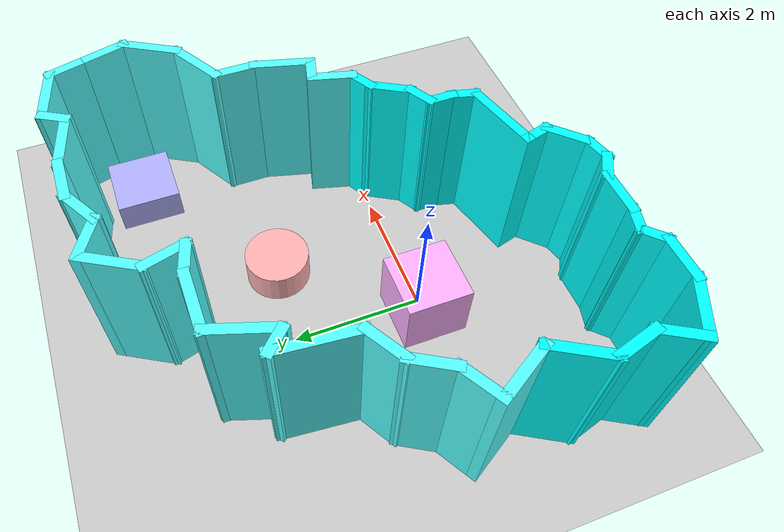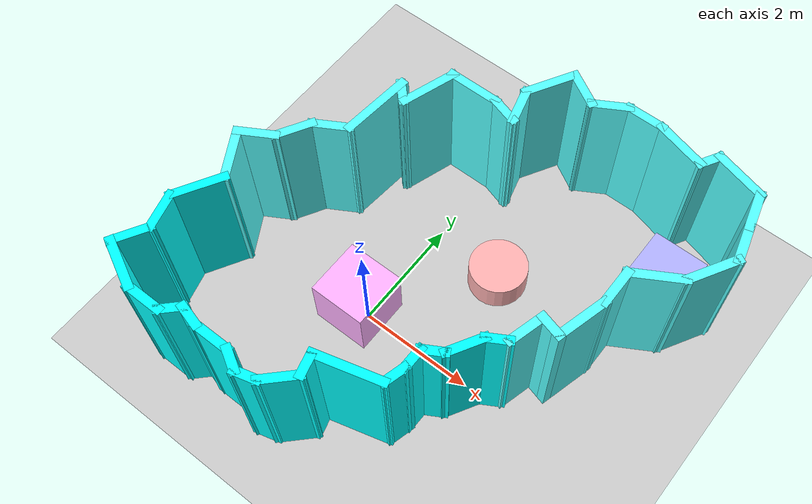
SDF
<sdf version="1.6">
 <world name="default">
  <light name="sun" type="directional">
   <pose>0 0 10 0 -0 0</pose>
   <diffuse>0.8 0.8 0.8 1</diffuse>
   <specular>0.2 0.2 0.2 1</specular>
   <attenuation>
    <range>1000</range>
    <constant>0.9</constant>
    <linear>0.01</linear>
    <quadratic>0.001</quadratic>
   </attenuation>
   <direction>-0.5 0.1 -0.9</direction>
  </light>
  <model name="ground_plane">
   <static>1</static>
   <link name="link">
    <collision name="collision">
     <geometry><plane><normal>0 0 1</normal><size>100 100</size></plane></geometry>
     <surface>
      <contact><collide_bitmask>65535</collide_bitmask></contact>
      <friction><ode><mu>100</mu><mu2>50</mu2></ode></friction>
     </surface>
    </collision>
    <visual name="visual">
     <cast_shadows>0</cast_shadows>
     <geometry><plane><normal>0 0 1</normal><size>100 100</size></plane></geometry>
     <material>
      <script><uri>file://media/materials/scripts/gazebo.material</uri><name>Gazebo/Grey</name></script>
     </material>
    </visual>
   </link>
  </model>
  <gravity>0 0 -9.8</gravity>
  <magnetic_field>6e-06 2.3e-05 -4.2e-05</magnetic_field>
  <atmosphere type="adiabatic"/>
  <physics name="default_physics" default="0" type="ode">
   <max_step_size>0.001</max_step_size>
   <real_time_factor>1</real_time_factor>
   <real_time_update_rate>1000</real_time_update_rate>
  </physics>
  <scene><ambient>0.4 0.4 0.4 1</ambient><background>0.7 0.7 0.7 1</background><shadows>1</shadows></scene>
  <audio><device>default</device></audio>
  <spherical_coordinates>
   <surface_model>EARTH_WGS84</surface_model>
   <latitude_deg>0</latitude_deg>
   <longitude_deg>0</longitude_deg>
   <elevation>0</elevation>
   <heading_deg>0</heading_deg>
  </spherical_coordinates>
  <model name="maze2">
   <pose>0.785293 0.998675 0 0 -0 0</pose>
   <link name="Wall_1">
    <collision name="Wall_1_Collision">
     <geometry><box><size>0.75 0.15 2.5</size></box></geometry>
     <pose>0 0 1.25 0 -0 0</pose>
    </collision>
    <visual name="Wall_1_Visual">
     <pose>0 0 1.25 0 -0 0</pose>
     <geometry><box><size>0.75 0.15 2.5</size></box></geometry>
     <material>
      <script><uri>file://media/materials/scripts/gazebo.material</uri><name>Gazebo/Grey</name></script>
      <ambient>0 1 1 1</ambient>
     </material>
     <meta><layer>0</layer></meta>
    </visual>
    <pose>-2.6747 -3.55468 0 0 -0 0</pose>
   </link>
   <link name="Wall_10">
    <collision name="Wall_10_Collision">
     <geometry><box><size>0.5 0.15 2.5</size></box></geometry>
     <pose>0 0 1.25 0 -0 0</pose>
    </collision>
    <visual name="Wall_10_Visual">
     <pose>0 0 1.25 0 -0 0</pose>
     <geometry><box><size>0.5 0.15 2.5</size></box></geometry>
     <material>
      <script><uri>file://media/materials/scripts/gazebo.material</uri><name>Gazebo/Grey</name></script>
      <ambient>0 1 1 1</ambient>
     </material>
     <meta><layer>0</layer></meta>
    </visual>
    <pose>0.893535 -2.26611 0 0 -0 1.309</pose>
   </link>
   <link name="Wall_11">
    <collision name="Wall_11_Collision">
     <geometry><box><size>0.5 0.15 2.5</size></box></geometry>
     <pose>0 0 1.25 0 -0 0</pose>
    </collision>
    <visual name="Wall_11_Visual">
     <pose>0 0 1.25 0 -0 0</pose>
     <geometry><box><size>0.5 0.15 2.5</size></box></geometry>
     <material>
      <script><uri>file://media/materials/scripts/gazebo.material</uri><name>Gazebo/Grey</name></script>
      <ambient>0 1 1 1</ambient>
     </material>
     <meta><layer>0</layer></meta>
    </visual>
    <pose>0.938829 -1.92207 0 0 -0 1.5708</pose>
   </link>
   <link name="Wall_12">
    <collision name="Wall_12_Collision">
     <geometry><box><size>0.5 0.15 2.5</size></box></geometry>
     <pose>0 0 1.25 0 -0 0</pose>
    </collision>
    <visual name="Wall_12_Visual">
     <pose>0 0 1.25 0 -0 0</pose>
     <geometry><box><size>0.5 0.15 2.5</size></box></geometry>
     <material>
      <script><uri>file://media/materials/scripts/gazebo.material</uri><name>Gazebo/Grey</name></script>
      <ambient>0 1 1 1</ambient>
     </material>
     <meta><layer>0</layer></meta>
    </visual>
    <pose>1.09038 -1.65958 0 0 -0 0.523599</pose>
   </link>
   <link name="Wall_13">
    <collision name="Wall_13_Collision">
     <geometry><box><size>0.75 0.15 2.5</size></box></geometry>
     <pose>0 0 1.25 0 -0 0</pose>
    </collision>
    <visual name="Wall_13_Visual">
     <pose>0 0 1.25 0 -0 0</pose>
     <geometry><box><size>0.75 0.15 2.5</size></box></geometry>
     <material>
      <script><uri>file://media/materials/scripts/gazebo.material</uri><name>Gazebo/Grey</name></script>
      <ambient>0 1 1 1</ambient>
     </material>
     <meta><layer>0</layer></meta>
    </visual>
    <pose>1.39194 -1.31227 0 0 -0 1.0472</pose>
   </link>
   <link name="Wall_15">
    <collision name="Wall_15_Collision">
     <geometry><box><size>0.5 0.15 2.5</size></box></geometry>
     <pose>0 0 1.25 0 -0 0</pose>
    </collision>
    <visual name="Wall_15_Visual">
     <pose>0 0 1.25 0 -0 0</pose>
     <geometry><box><size>0.5 0.15 2.5</size></box></geometry>
     <material>
      <script><uri>file://media/materials/scripts/gazebo.material</uri><name>Gazebo/Grey</name></script>
      <ambient>0 1 1 1</ambient>
     </material>
     <meta><layer>0</layer></meta>
    </visual>
    <pose>1.69349 -0.96496 0 0 -0 0.523599</pose>
   </link>
   <link name="Wall_16">
    <collision name="Wall_16_Collision">
     <geometry><box><size>0.75 0.15 2.5</size></box></geometry>
     <pose>0 0 1.25 0 -0 0</pose>
    </collision>
    <visual name="Wall_16_Visual">
     <pose>0 0 1.25 0 -0 0</pose>
     <geometry><box><size>0.75 0.15 2.5</size></box></geometry>
     <material>
      <script><uri>file://media/materials/scripts/gazebo.material</uri><name>Gazebo/Grey</name></script>
      <ambient>0.333333 1 1 1</ambient>
     </material>
     <meta><layer>0</layer></meta>
    </visual>
    <pose>1.92269 -0.587682 0 0 -0 1.309</pose>
   </link>
   <link name="Wall_17">
    <collision name="Wall_17_Collision">
     <geometry><box><size>0.5 0.15 2.5</size></box></geometry>
     <pose>0 0 1.25 0 -0 0</pose>
    </collision>
    <visual name="Wall_17_Visual">
     <pose>0 0 1.25 0 -0 0</pose>
     <geometry><box><size>0.5 0.15 2.5</size></box></geometry>
     <material>
      <script><uri>file://media/materials/scripts/gazebo.material</uri><name>Gazebo/Grey</name></script>
      <ambient>0.333333 1 1 1</ambient>
     </material>
     <meta><layer>0</layer></meta>
    </visual>
    <pose>2.16938 -0.343198 0 0 -0 -0.261799</pose>
   </link>
   <link name="Wall_18">
    <collision name="Wall_18_Collision">
     <geometry><box><size>1 0.15 2.5</size></box></geometry>
     <pose>0 0 1.25 0 -0 0</pose>
    </collision>
    <visual name="Wall_18_Visual">
     <pose>0 0 1.25 0 -0 0</pose>
     <geometry><box><size>1 0.15 2.5</size></box></geometry>
     <material>
      <script><uri>file://media/materials/scripts/gazebo.material</uri><name>Gazebo/Grey</name></script>
      <ambient>0.333333 1 1 1</ambient>
     </material>
     <meta><layer>0</layer></meta>
    </visual>
    <pose>2.44841 0.022027 0 0 -0 1.309</pose>
   </link>
   <link name="Wall_19">
    <collision name="Wall_19_Collision">
     <geometry><box><size>0.75 0.15 2.5</size></box></geometry>
     <pose>0 0 1.25 0 -0 0</pose>
    </collision>
    <visual name="Wall_19_Visual">
     <pose>0 0 1.25 0 -0 0</pose>
     <geometry><box><size>0.75 0.15 2.5</size></box></geometry>
     <material>
      <script><uri>file://media/materials/scripts/gazebo.material</uri><name>Gazebo/Grey</name></script>
      <ambient>0.333333 1 1 1</ambient>
     </material>
     <meta><layer>0</layer></meta>
    </visual>
    <pose>2.55841 0.732546 0 0 -0 1.5708</pose>
   </link>
   <link name="Wall_2">
    <collision name="Wall_2_Collision">
     <geometry><box><size>0.5 0.15 2.5</size></box></geometry>
     <pose>0 0 1.25 0 -0 0</pose>
    </collision>
    <visual name="Wall_2_Visual">
     <pose>0 0 1.25 0 -0 0</pose>
     <geometry><box><size>0.5 0.15 2.5</size></box></geometry>
     <material>
      <script><uri>file://media/materials/scripts/gazebo.material</uri><name>Gazebo/Grey</name></script>
      <ambient>0 1 1 1</ambient>
     </material>
     <meta><layer>0</layer></meta>
    </visual>
    <pose>-2.25095 -3.43093 0 0 -0 0.785398</pose>
   </link>
   <link name="Wall_20">
    <collision name="Wall_20_Collision">
     <geometry><box><size>1 0.15 2.5</size></box></geometry>
     <pose>0 0 1.25 0 -0 0</pose>
    </collision>
    <visual name="Wall_20_Visual">
     <pose>0 0 1.25 0 -0 0</pose>
     <geometry><box><size>1 0.15 2.5</size></box></geometry>
     <material>
      <script><uri>file://media/materials/scripts/gazebo.material</uri><name>Gazebo/Grey</name></script>
      <ambient>0.333333 1 1 1</ambient>
     </material>
     <meta><layer>0</layer></meta>
    </visual>
    <pose>2.92647 1.24505 0 0 -0 0.523599</pose>
   </link>
   <link name="Wall_21">
    <collision name="Wall_21_Collision">
     <geometry><box><size>1 0.15 2.5</size></box></geometry>
     <pose>0 0 1.25 0 -0 0</pose>
    </collision>
    <visual name="Wall_21_Visual">
     <pose>0 0 1.25 0 -0 0</pose>
     <geometry><box><size>1 0.15 2.5</size></box></geometry>
     <material>
      <script><uri>file://media/materials/scripts/gazebo.material</uri><name>Gazebo/Grey</name></script>
      <ambient>0.333333 1 1 1</ambient>
     </material>
     <meta><layer>0</layer></meta>
    </visual>
    <pose>3.50703 1.82561 0 0 -0 1.0472</pose>
   </link>
   <link name="Wall_22">
    <collision name="Wall_22_Collision">
     <geometry><box><size>0.75 0.15 2.5</size></box></geometry>
     <pose>0 0 1.25 0 -0 0</pose>
    </collision>
    <visual name="Wall_22_Visual">
     <pose>0 0 1.25 0 -0 0</pose>
     <geometry><box><size>0.75 0.15 2.5</size></box></geometry>
     <material>
      <script><uri>file://media/materials/scripts/gazebo.material</uri><name>Gazebo/Grey</name></script>
      <ambient>0.333333 1 1 1</ambient>
     </material>
     <meta><layer>0</layer></meta>
    </visual>
    <pose>3.64188 2.48345 0 0 -0 1.8326</pose>
   </link>
   <link name="Wall_23">
    <collision name="Wall_23_Collision">
     <geometry><box><size>0.75 0.15 2.5</size></box></geometry>
     <pose>0 0 1.25 0 -0 0</pose>
    </collision>
    <visual name="Wall_23_Visual">
     <pose>0 0 1.25 0 -0 0</pose>
     <geometry><box><size>0.75 0.15 2.5</size></box></geometry>
     <material>
      <script><uri>file://media/materials/scripts/gazebo.material</uri><name>Gazebo/Grey</name></script>
      <ambient>0.333333 1 1 1</ambient>
     </material>
     <meta><layer>0</layer></meta>
    </visual>
    <pose>3.48659 3.063 0 0 -0 1.8326</pose>
   </link>
   <link name="Wall_24">
    <collision name="Wall_24_Collision">
     <geometry><box><size>1 0.15 2.5</size></box></geometry>
     <pose>0 0 1.25 0 -0 0</pose>
    </collision>
    <visual name="Wall_24_Visual">
     <pose>0 0 1.25 0 -0 0</pose>
     <geometry><box><size>1 0.15 2.5</size></box></geometry>
     <material>
      <script><uri>file://media/materials/scripts/gazebo.material</uri><name>Gazebo/Grey</name></script>
      <ambient>0.333333 1 1 1</ambient>
     </material>
     <meta><layer>0</layer></meta>
    </visual>
    <pose>2.99843 3.46278 0 0 -0 2.87979</pose>
   </link>
   <link name="Wall_25">
    <collision name="Wall_25_Collision">
     <geometry><box><size>0.5 0.15 2.5</size></box></geometry>
     <pose>0 0 1.25 0 -0 0</pose>
    </collision>
    <visual name="Wall_25_Visual">
     <pose>0 0 1.25 0 -0 0</pose>
     <geometry><box><size>0.5 0.15 2.5</size></box></geometry>
     <material>
      <script><uri>file://media/materials/scripts/gazebo.material</uri><name>Gazebo/Grey</name></script>
      <ambient>0.333333 1 1 1</ambient>
     </material>
     <meta><layer>0</layer></meta>
    </visual>
    <pose>2.50041 3.42122 0 0 -0 -2.0944</pose>
   </link>
   <link name="Wall_26">
    <collision name="Wall_26_Collision">
     <geometry><box><size>1 0.15 2.5</size></box></geometry>
     <pose>0 0 1.25 0 -0 0</pose>
    </collision>
    <visual name="Wall_26_Visual">
     <pose>0 0 1.25 0 -0 0</pose>
     <geometry><box><size>1 0.15 2.5</size></box></geometry>
     <material>
      <script><uri>file://media/materials/scripts/gazebo.material</uri><name>Gazebo/Grey</name></script>
      <ambient>0.333333 1 1 1</ambient>
     </material>
     <meta><layer>0</layer></meta>
    </visual>
    <pose>2.00239 3.37966 0 0 -0 2.87979</pose>
   </link>
   <link name="Wall_27">
    <collision name="Wall_27_Collision">
     <geometry><box><size>0.75 0.15 2.5</size></box></geometry>
     <pose>0 0 1.25 0 -0 0</pose>
    </collision>
    <visual name="Wall_27_Visual">
     <pose>0 0 1.25 0 -0 0</pose>
     <geometry><box><size>0.75 0.15 2.5</size></box></geometry>
     <material>
      <script><uri>file://media/materials/scripts/gazebo.material</uri><name>Gazebo/Grey</name></script>
      <ambient>0.333333 1 1 1</ambient>
     </material>
     <meta><layer>0</layer></meta>
    </visual>
    <pose>1.29187 3.48966 0 0 -0 3.14159</pose>
   </link>
   <link name="Wall_28">
    <collision name="Wall_28_Collision">
     <geometry><box><size>0.75 0.15 2.5</size></box></geometry>
     <pose>0 0 1.25 0 -0 0</pose>
    </collision>
    <visual name="Wall_28_Visual">
     <pose>0 0 1.25 0 -0 0</pose>
     <geometry><box><size>0.75 0.15 2.5</size></box></geometry>
     <material>
      <script><uri>file://media/materials/scripts/gazebo.material</uri><name>Gazebo/Grey</name></script>
      <ambient>0.333333 1 1 1</ambient>
     </material>
     <meta><layer>0</layer></meta>
    </visual>
    <pose>0.732065 3.33966 0 0 -0 -2.61799</pose>
   </link>
   <link name="Wall_29">
    <collision name="Wall_29_Collision">
     <geometry><box><size>0.75 0.15 2.5</size></box></geometry>
     <pose>0 0 1.25 0 -0 0</pose>
    </collision>
    <visual name="Wall_29_Visual">
     <pose>0 0 1.25 0 -0 0</pose>
     <geometry><box><size>0.75 0.15 2.5</size></box></geometry>
     <material>
      <script><uri>file://media/materials/scripts/gazebo.material</uri><name>Gazebo/Grey</name></script>
      <ambient>0.333333 1 1 1</ambient>
     </material>
     <meta><layer>0</layer></meta>
    </visual>
    <pose>0.21245 3.33966 0 0 -0 2.61799</pose>
   </link>
   <link name="Wall_3">
    <collision name="Wall_3_Collision">
     <geometry><box><size>0.5 0.15 2.5</size></box></geometry>
     <pose>0 0 1.25 0 -0 0</pose>
    </collision>
    <visual name="Wall_3_Visual">
     <pose>0 0 1.25 0 -0 0</pose>
     <geometry><box><size>0.5 0.15 2.5</size></box></geometry>
     <material>
      <script><uri>file://media/materials/scripts/gazebo.material</uri><name>Gazebo/Grey</name></script>
      <ambient>0 1 1 1</ambient>
     </material>
     <meta><layer>0</layer></meta>
    </visual>
    <pose>-1.95817 -3.35248 0 0 -0 -0.261799</pose>
   </link>
   <link name="Wall_30">
    <collision name="Wall_30_Collision">
     <geometry><box><size>1 0.15 2.5</size></box></geometry>
     <pose>0 0 1.25 0 -0 0</pose>
    </collision>
    <visual name="Wall_30_Visual">
     <pose>0 0 1.25 0 -0 0</pose>
     <geometry><box><size>1 0.15 2.5</size></box></geometry>
     <material>
      <script><uri>file://media/materials/scripts/gazebo.material</uri><name>Gazebo/Grey</name></script>
      <ambient>0.333333 1 1 1</ambient>
     </material>
     <meta><layer>0</layer></meta>
    </visual>
    <pose>-0.259858 3.1216 0 0 -0 -2.0944</pose>
   </link>
   <link name="Wall_31">
    <collision name="Wall_31_Collision">
     <geometry><box><size>0.75 0.15 2.5</size></box></geometry>
     <pose>0 0 1.25 0 -0 0</pose>
    </collision>
    <visual name="Wall_31_Visual">
     <pose>0 0 1.25 0 -0 0</pose>
     <geometry><box><size>0.75 0.15 2.5</size></box></geometry>
     <material>
      <script><uri>file://media/materials/scripts/gazebo.material</uri><name>Gazebo/Grey</name></script>
      <ambient>0.333333 1 1 1</ambient>
     </material>
     <meta><layer>0</layer></meta>
    </visual>
    <pose>-0.394712 2.46376 0 0 -0 -1.309</pose>
   </link>
   <link name="Wall_32">
    <collision name="Wall_32_Collision">
     <geometry><box><size>0.591953 0.15 2.5</size></box></geometry>
     <pose>0 0 1.25 0 -0 0</pose>
    </collision>
    <visual name="Wall_32_Visual">
     <pose>0 0 1.25 0 -0 0</pose>
     <geometry><box><size>0.591953 0.15 2.5</size></box></geometry>
     <material>
      <script><uri>file://media/materials/scripts/gazebo.material</uri><name>Gazebo/Grey</name></script>
      <ambient>0.333333 1 1 1</ambient>
     </material>
     <meta><layer>0</layer></meta>
    </visual>
    <pose>-0.528666 2.23767 0 0 -0 2.84924</pose>
   </link>
   <link name="Wall_33">
    <collision name="Wall_33_Collision">
     <geometry><box><size>1 0.15 2.5</size></box></geometry>
     <pose>0 0 1.25 0 -0 0</pose>
    </collision>
    <visual name="Wall_33_Visual">
     <pose>0 0 1.25 0 -0 0</pose>
     <geometry><box><size>1 0.15 2.5</size></box></geometry>
     <material>
      <script><uri>file://media/materials/scripts/gazebo.material</uri><name>Gazebo/Grey</name></script>
      <ambient>0.333333 1 1 1</ambient>
     </material>
     <meta><layer>0</layer></meta>
    </visual>
    <pose>-1.17849 2.30136 0 0 -0 3.14159</pose>
   </link>
   <link name="Wall_34">
    <collision name="Wall_34_Collision">
     <geometry><box><size>1.07838 0.15 2.5</size></box></geometry>
     <pose>0 0 1.25 0 -0 0</pose>
    </collision>
    <visual name="Wall_34_Visual">
     <pose>0 0 1.25 0 -0 0</pose>
     <geometry><box><size>1.07838 0.15 2.5</size></box></geometry>
     <material>
      <script><uri>file://media/materials/scripts/gazebo.material</uri><name>Gazebo/Grey</name></script>
      <ambient>0.333333 1 1 1</ambient>
     </material>
     <meta><layer>0</layer></meta>
    </visual>
    <pose>-1.73629 1.86074 0 0 -0 -1.8908</pose>
   </link>
   <link name="Wall_35">
    <collision name="Wall_35_Collision">
     <geometry><box><size>0.5 0.15 2.5</size></box></geometry>
     <pose>0 0 1.25 0 -0 0</pose>
    </collision>
    <visual name="Wall_35_Visual">
     <pose>0 0 1.25 0 -0 0</pose>
     <geometry><box><size>0.5 0.15 2.5</size></box></geometry>
     <material>
      <script><uri>file://media/materials/scripts/gazebo.material</uri><name>Gazebo/Grey</name></script>
      <ambient>0.333333 1 1 1</ambient>
     </material>
     <meta><layer>0</layer></meta>
    </visual>
    <pose>-2.01927 1.53063 0 0 -0 2.35619</pose>
   </link>
   <link name="Wall_36">
    <collision name="Wall_36_Collision">
     <geometry><box><size>1.32092 0.15 2.5</size></box></geometry>
     <pose>0 0 1.25 0 -0 0</pose>
    </collision>
    <visual name="Wall_36_Visual">
     <pose>0 0 1.25 0 -0 0</pose>
     <geometry><box><size>1.32092 0.15 2.5</size></box></geometry>
     <material>
      <script><uri>file://media/materials/scripts/gazebo.material</uri><name>Gazebo/Grey</name></script>
      <ambient>0.333333 1 1 1</ambient>
     </material>
     <meta><layer>0</layer></meta>
    </visual>
    <pose>-2.18269 1.08454 0 0 -0 -1.66128</pose>
   </link>
   <link name="Wall_37">
    <collision name="Wall_37_Collision">
     <geometry><box><size>0.75 0.15 2.5</size></box></geometry>
     <pose>0 0 1.25 0 -0 0</pose>
    </collision>
    <visual name="Wall_37_Visual">
     <pose>0 0 1.25 0 -0 0</pose>
     <geometry><box><size>0.75 0.15 2.5</size></box></geometry>
     <material>
      <script><uri>file://media/materials/scripts/gazebo.material</uri><name>Gazebo/Grey</name></script>
      <ambient>0.333333 1 1 1</ambient>
     </material>
     <meta><layer>0</layer></meta>
    </visual>
    <pose>-2.4954 0.351476 0 0 -0 -2.61799</pose>
   </link>
   <link name="Wall_38">
    <collision name="Wall_38_Collision">
     <geometry><box><size>0.75 0.15 2.5</size></box></geometry>
     <pose>0 0 1.25 0 -0 0</pose>
    </collision>
    <visual name="Wall_38_Visual">
     <pose>0 0 1.25 0 -0 0</pose>
     <geometry><box><size>0.75 0.15 2.5</size></box></geometry>
     <material>
      <script><uri>file://media/materials/scripts/gazebo.material</uri><name>Gazebo/Grey</name></script>
      <ambient>0.333333 1 1 1</ambient>
     </material>
     <meta><layer>0</layer></meta>
    </visual>
    <pose>-2.90521 -0.058331 0 0 -0 -2.0944</pose>
   </link>
   <link name="Wall_39">
    <collision name="Wall_39_Collision">
     <geometry><box><size>0.75 0.15 2.5</size></box></geometry>
     <pose>0 0 1.25 0 -0 0</pose>
    </collision>
    <visual name="Wall_39_Visual">
     <pose>0 0 1.25 0 -0 0</pose>
     <geometry><box><size>0.75 0.15 2.5</size></box></geometry>
     <material>
      <script><uri>file://media/materials/scripts/gazebo.material</uri><name>Gazebo/Grey</name></script>
      <ambient>0.333333 1 1 1</ambient>
     </material>
     <meta><layer>0</layer></meta>
    </visual>
    <pose>-3.31501 -0.468139 0 0 -0 -2.61799</pose>
   </link>
   <link name="Wall_4">
    <collision name="Wall_4_Collision">
     <geometry><box><size>0.75 0.15 2.5</size></box></geometry>
     <pose>0 0 1.25 0 -0 0</pose>
    </collision>
    <visual name="Wall_4_Visual">
     <pose>0 0 1.25 0 -0 0</pose>
     <geometry><box><size>0.75 0.15 2.5</size></box></geometry>
     <material>
      <script><uri>file://media/materials/scripts/gazebo.material</uri><name>Gazebo/Grey</name></script>
      <ambient>0 1 1 1</ambient>
     </material>
     <meta><layer>0</layer></meta>
    </visual>
    <pose>-1.48914 -3.39778 0 0 -0 0</pose>
   </link>
   <link name="Wall_40">
    <collision name="Wall_40_Collision">
     <geometry><box><size>1 0.15 2.5</size></box></geometry>
     <pose>0 0 1.25 0 -0 0</pose>
    </collision>
    <visual name="Wall_40_Visual">
     <pose>0 0 1.25 0 -0 0</pose>
     <geometry><box><size>1 0.15 2.5</size></box></geometry>
     <material>
      <script><uri>file://media/materials/scripts/gazebo.material</uri><name>Gazebo/Grey</name></script>
      <ambient>0.333333 1 1 1</ambient>
     </material>
     <meta><layer>0</layer></meta>
    </visual>
    <pose>-3.36232 -0.9862 0 0 -0 -1.0472</pose>
   </link>
   <link name="Wall_41">
    <collision name="Wall_41_Collision">
     <geometry><box><size>1 0.15 2.5</size></box></geometry>
     <pose>0 0 1.25 0 -0 0</pose>
    </collision>
    <visual name="Wall_41_Visual">
     <pose>0 0 1.25 0 -0 0</pose>
     <geometry><box><size>1 0.15 2.5</size></box></geometry>
     <material>
      <script><uri>file://media/materials/scripts/gazebo.material</uri><name>Gazebo/Grey</name></script>
      <ambient>0 1 1 1</ambient>
     </material>
     <meta><layer>0</layer></meta>
    </visual>
    <pose>-3.36232 -1.72232 0 0 -0 -2.0944</pose>
   </link>
   <link name="Wall_42">
    <collision name="Wall_42_Collision">
     <geometry><box><size>0.75 0.15 2.5</size></box></geometry>
     <pose>0 0 1.25 0 -0 0</pose>
    </collision>
    <visual name="Wall_42_Visual">
     <pose>0 0 1.25 0 -0 0</pose>
     <geometry><box><size>0.75 0.15 2.5</size></box></geometry>
     <material>
      <script><uri>file://media/materials/scripts/gazebo.material</uri><name>Gazebo/Grey</name></script>
      <ambient>0 1 1 1</ambient>
     </material>
     <meta><layer>0</layer></meta>
    </visual>
    <pose>-3.49717 -2.38016 0 0 -0 -1.309</pose>
   </link>
   <link name="Wall_43">
    <collision name="Wall_43_Collision">
     <geometry><box><size>0.75 0.15 2.5</size></box></geometry>
     <pose>0 0 1.25 0 -0 0</pose>
    </collision>
    <visual name="Wall_43_Visual">
     <pose>0 0 1.25 0 -0 0</pose>
     <geometry><box><size>0.75 0.15 2.5</size></box></geometry>
     <material>
      <script><uri>file://media/materials/scripts/gazebo.material</uri><name>Gazebo/Grey</name></script>
      <ambient>0 1 1 1</ambient>
     </material>
     <meta><layer>0</layer></meta>
    </visual>
    <pose>-3.56953 -2.92975 0 0 -0 -2.0944</pose>
   </link>
   <link name="Wall_44">
    <collision name="Wall_44_Collision">
     <geometry><box><size>0.979511 0.15 2.5</size></box></geometry>
     <pose>0 0 1.25 0 -0 0</pose>
    </collision>
    <visual name="Wall_44_Visual">
     <pose>0 0 1.25 0 -0 0</pose>
     <geometry><box><size>0.979511 0.15 2.5</size></box></geometry>
     <material>
      <script><uri>file://media/materials/scripts/gazebo.material</uri><name>Gazebo/Grey</name></script>
      <ambient>0 1 1 1</ambient>
     </material>
     <meta><layer>0</layer></meta>
    </visual>
    <pose>-3.34711 -3.37211 0 0 -0 -0.455784</pose>
   </link>
   <link name="Wall_5">
    <collision name="Wall_5_Collision">
     <geometry><box><size>0.5 0.15 2.5</size></box></geometry>
     <pose>0 0 1.25 0 -0 0</pose>
    </collision>
    <visual name="Wall_5_Visual">
     <pose>0 0 1.25 0 -0 0</pose>
     <geometry><box><size>0.5 0.15 2.5</size></box></geometry>
     <material>
      <script><uri>file://media/materials/scripts/gazebo.material</uri><name>Gazebo/Grey</name></script>
      <ambient>0 1 1 1</ambient>
     </material>
     <meta><layer>0</layer></meta>
    </visual>
    <pose>-1.03758 -3.48528 0 0 -0 -0.523599</pose>
   </link>
   <link name="Wall_6">
    <collision name="Wall_6_Collision">
     <geometry><box><size>0.5 0.15 2.5</size></box></geometry>
     <pose>0 0 1.25 0 -0 0</pose>
    </collision>
    <visual name="Wall_6_Visual">
     <pose>0 0 1.25 0 -0 0</pose>
     <geometry><box><size>0.5 0.15 2.5</size></box></geometry>
     <material>
      <script><uri>file://media/materials/scripts/gazebo.material</uri><name>Gazebo/Grey</name></script>
      <ambient>0 1 1 1</ambient>
     </material>
     <meta><layer>0</layer></meta>
    </visual>
    <pose>-0.716991 -3.52748 0 0 -0 0.261799</pose>
   </link>
   <link name="Wall_7">
    <collision name="Wall_7_Collision">
     <geometry><box><size>0.75 0.15 2.5</size></box></geometry>
     <pose>0 0 1.25 0 -0 0</pose>
    </collision>
    <visual name="Wall_7_Visual">
     <pose>0 0 1.25 0 -0 0</pose>
     <geometry><box><size>0.75 0.15 2.5</size></box></geometry>
     <material>
      <script><uri>file://media/materials/scripts/gazebo.material</uri><name>Gazebo/Grey</name></script>
      <ambient>0 1 1 1</ambient>
     </material>
     <meta><layer>0</layer></meta>
    </visual>
    <pose>-0.335822 -3.27006 0 0 -0 0.785398</pose>
   </link>
   <link name="Wall_8">
    <collision name="Wall_8_Collision">
     <geometry><box><size>0.5 0.15 2.5</size></box></geometry>
     <pose>0 0 1.25 0 -0 0</pose>
    </collision>
    <visual name="Wall_8_Visual">
     <pose>0 0 1.25 0 -0 0</pose>
     <geometry><box><size>0.5 0.15 2.5</size></box></geometry>
     <material>
      <script><uri>file://media/materials/scripts/gazebo.material</uri><name>Gazebo/Grey</name></script>
      <ambient>0 1 1 1</ambient>
     </material>
     <meta><layer>0</layer></meta>
    </visual>
    <pose>-0.168983 -2.88889 0 0 -0 1.8326</pose>
   </link>
   <link name="Wall_9">
    <collision name="Wall_9_Collision">
     <geometry><box><size>1.25 0.15 2.5</size></box></geometry>
     <pose>0 0 1.25 0 -0 0</pose>
    </collision>
    <visual name="Wall_9_Visual">
     <pose>0 0 1.25 0 -0 0</pose>
     <geometry><box><size>1.25 0.15 2.5</size></box></geometry>
     <material>
      <script><uri>file://media/materials/scripts/gazebo.material</uri><name>Gazebo/Grey</name></script>
      <ambient>0 1 1 1</ambient>
     </material>
     <meta><layer>0</layer></meta>
    </visual>
    <pose>0.316983 -2.5775 0 0 -0 0.261799</pose>
   </link>
   <static>1</static>
  </model>
  <model name="unit_box123">
   <link name="link">
    <inertial>
     <mass>1</mass>
     <inertia>
      <ixx>0.166667</ixx>
      <ixy>0</ixy>
      <ixz>0</ixz>
      <iyy>0.166667</iyy>
      <iyz>0</iyz>
      <izz>0.166667</izz>
     </inertia>
    </inertial>
    <visual name="visual">
     <geometry><box><size>1 1 1</size></box></geometry>
     <material>
      <script><name>Gazebo/Grey</name><uri>file://media/materials/scripts/gazebo.material</uri></script>
      <ambient>1 0 1 0</ambient>
      <shader type="vertex"><normal_map>__default__</normal_map></shader>
      <diffuse>1 0.7 1 1</diffuse>
      <specular>1 0.01 1 1</specular>
      <emissive>1 0 1 1</emissive>
     </material>
    </visual>
    <collision name="collision">
     <geometry><box><size>1 1 1</size></box></geometry>
     <surface>
      <friction>
       <ode><mu>1</mu><mu2>1</mu2><fdir1>0 0 0</fdir1><slip1>0</slip1><slip2>0</slip2></ode>
       <torsional>
        <coefficient>1</coefficient>
        <patch_radius>0</patch_radius>
        <surface_radius>0</surface_radius>
        <use_patch_radius>1</use_patch_radius>
        <ode><slip>0</slip></ode>
       </torsional>
      </friction>
      <bounce><restitution_coefficient>0</restitution_coefficient><threshold>1e+06</threshold></bounce>
      <contact>
       <collide_without_contact>0</collide_without_contact>
       <collide_without_contact_bitmask>1</collide_without_contact_bitmask>
       <collide_bitmask>1</collide_bitmask>
       <ode>
        <soft_cfm>0</soft_cfm>
        <soft_erp>0.2</soft_erp>
        <kp>1e+13</kp>
        <kd>1</kd>
        <max_vel>0.01</max_vel>
        <min_depth>0</min_depth>
       </ode>
       <bullet>
        <split_impulse>1</split_impulse>
        <split_impulse_penetration_threshold>-0.01</split_impulse_penetration_threshold>
        <soft_cfm>0</soft_cfm>
        <soft_erp>0.2</soft_erp>
        <kp>1e+13</kp>
        <kd>1</kd>
       </bullet>
      </contact>
     </surface>
    </collision>
   </link>
   <static>0</static>
   <pose>-0.194382 0.000529 0.5 0 -0 0</pose>
  </model>
  <model name="unit_cylinder_0">
   <link name="link">
    <inertial>
     <mass>1</mass>
     <inertia><ixx>0.145833</ixx><ixy>0</ixy><ixz>0</ixz><iyy>0.145833</iyy><iyz>0</iyz><izz>0.125</izz></inertia>
    </inertial>
    <visual name="visual">
     <geometry><cylinder><radius>0.5</radius><length>1</length></cylinder></geometry>
     <material>
      <script><name>Gazebo/Grey</name><uri>file://media/materials/scripts/gazebo.material</uri></script>
      <ambient>1 0.5 0 0</ambient>
      <shader type="vertex"><normal_map>__default__</normal_map></shader>
      <diffuse>1 0.7 0.7 1</diffuse>
      <specular>1 0.01 0.01 1</specular>
      <emissive>1 0 0 1</emissive>
     </material>
    </visual>
    <collision name="collision">
     <geometry><cylinder><radius>0.5</radius><length>1</length></cylinder></geometry>
     <surface>
      <friction>
       <ode><mu>1</mu><mu2>1</mu2><fdir1>0 0 0</fdir1><slip1>0</slip1><slip2>0</slip2></ode>
       <torsional>
        <coefficient>1</coefficient>
        <patch_radius>0</patch_radius>
        <surface_radius>0</surface_radius>
        <use_patch_radius>1</use_patch_radius>
        <ode><slip>0</slip></ode>
       </torsional>
      </friction>
      <bounce><restitution_coefficient>0</restitution_coefficient><threshold>1e+06</threshold></bounce>
      <contact>
       <collide_without_contact>0</collide_without_contact>
       <collide_without_contact_bitmask>1</collide_without_contact_bitmask>
       <collide_bitmask>1</collide_bitmask>
       <ode>
        <soft_cfm>0</soft_cfm>
        <soft_erp>0.2</soft_erp>
        <kp>1e+13</kp>
        <kd>1</kd>
        <max_vel>0.01</max_vel>
        <min_depth>0</min_depth>
       </ode>
       <bullet>
        <split_impulse>1</split_impulse>
        <split_impulse_penetration_threshold>-0.01</split_impulse_penetration_threshold>
        <soft_cfm>0</soft_cfm>
        <soft_erp>0.2</soft_erp>
        <kp>1e+13</kp>
        <kd>1</kd>
       </bullet>
      </contact>
     </surface>
    </collision>
   </link>
   <static>0</static>
   <pose>1.27901 1.86984 0 0 -0 0</pose>
  </model>
  <model name="unit_box_0">
   <link name="link">
    <inertial>
     <mass>1</mass>
     <inertia>
      <ixx>0.166667</ixx>
      <ixy>0</ixy>
      <ixz>0</ixz>
      <iyy>0.166667</iyy>
      <iyz>0</iyz>
      <izz>0.166667</izz>
     </inertia>
    </inertial>
    <visual name="visual">
     <geometry><box><size>1 1 1</size></box></geometry>
     <material>
      <script><name>Gazebo/Grey</name><uri>file://media/materials/scripts/gazebo.material</uri></script>
      <shader type="vertex"><normal_map>__default__</normal_map></shader>
      <ambient>0.3 0.3 1 1</ambient>
      <diffuse>0.7 0.7 1 1</diffuse>
      <specular>0.01 0.01 1 1</specular>
      <emissive>0 0 1 1</emissive>
     </material>
    </visual>
    <collision name="collision">
     <geometry><box><size>1 1 1</size></box></geometry>
     <surface>
      <friction>
       <ode><mu>1</mu><mu2>1</mu2><fdir1>0 0 0</fdir1><slip1>0</slip1><slip2>0</slip2></ode>
       <torsional>
        <coefficient>1</coefficient>
        <patch_radius>0</patch_radius>
        <surface_radius>0</surface_radius>
        <use_patch_radius>1</use_patch_radius>
        <ode><slip>0</slip></ode>
       </torsional>
      </friction>
      <bounce><restitution_coefficient>0</restitution_coefficient><threshold>1e+06</threshold></bounce>
      <contact>
       <collide_without_contact>0</collide_without_contact>
       <collide_without_contact_bitmask>1</collide_without_contact_bitmask>
       <collide_bitmask>1</collide_bitmask>
       <ode>
        <soft_cfm>0</soft_cfm>
        <soft_erp>0.2</soft_erp>
        <kp>1e+13</kp>
        <kd>1</kd>
        <max_vel>0.01</max_vel>
        <min_depth>0</min_depth>
       </ode>
       <bullet>
        <split_impulse>1</split_impulse>
        <split_impulse_penetration_threshold>-0.01</split_impulse_penetration_threshold>
        <soft_cfm>0</soft_cfm>
        <soft_erp>0.2</soft_erp>
        <kp>1e+13</kp>
        <kd>1</kd>
       </bullet>
      </contact>
     </surface>
    </collision>
   </link>
   <static>0</static>
   <pose>3.50553 3.51141 0 0 -0 0</pose>
  </model>
 </world>
</sdf>
